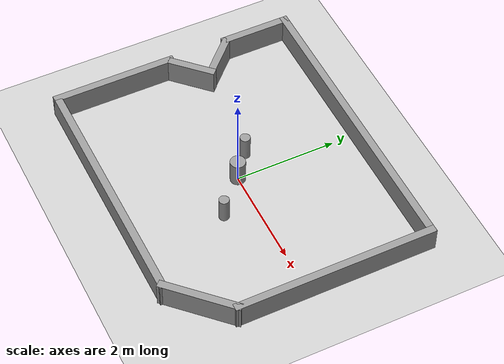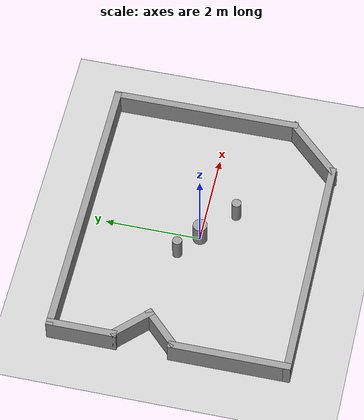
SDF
<sdf version="1.7">
 <world name="default">
  <light name="sun" type="directional">
   <pose>0 0 10 0 -0 0</pose>
   <diffuse>0.8 0.8 0.8 1</diffuse>
   <specular>0.2 0.2 0.2 1</specular>
   <attenuation>
    <range>1000</range>
    <constant>0.9</constant>
    <linear>0.01</linear>
    <quadratic>0.001</quadratic>
   </attenuation>
   <direction>-0.5 0.1 -0.9</direction>
   <spot><inner_angle>0</inner_angle><outer_angle>0</outer_angle><falloff>0</falloff></spot>
  </light>
  <model name="ground_plane">
   <static>1</static>
   <link name="link">
    <collision name="collision">
     <geometry><plane><normal>0 0 1</normal><size>100 100</size></plane></geometry>
     <surface><friction><ode><mu>100</mu><mu2>50</mu2></ode></friction></surface>
    </collision>
    <visual name="visual">
     <cast_shadows>0</cast_shadows>
     <geometry><plane><normal>0 0 1</normal><size>100 100</size></plane></geometry>
     <material>
      <script><uri>file://media/materials/scripts/gazebo.material</uri><name>Gazebo/Grey</name></script>
     </material>
    </visual>
   </link>
  </model>
  <gravity>0 0 -9.8</gravity>
  <magnetic_field>6e-06 2.3e-05 -4.2e-05</magnetic_field>
  <atmosphere type="adiabatic"/>
  <physics type="ode">
   <max_step_size>0.001</max_step_size>
   <real_time_factor>1</real_time_factor>
   <real_time_update_rate>1000</real_time_update_rate>
  </physics>
  <scene><ambient>0.4 0.4 0.4 1</ambient><background>0.7 0.7 0.7 1</background><shadows>1</shadows></scene>
  <spherical_coordinates>
   <surface_model>EARTH_WGS84</surface_model>
   <latitude_deg>0</latitude_deg>
   <longitude_deg>0</longitude_deg>
   <elevation>0</elevation>
   <heading_deg>0</heading_deg>
  </spherical_coordinates>
  <model name="room_with_edge">
   <link name="Wall_12">
    <pose>-0.5 -2.40947 0.25 0 -0 0</pose>
    <inertial>
     <inertia><ixx>0</ixx><ixy>0</ixy><ixz>0</ixz><iyy>0</iyy><iyz>0</iyz><izz>0</izz></inertia>
     <mass>0</mass>
    </inertial>
    <visual name="Wall_12_Visual">
     <geometry><box><size>5 0.15 0.5</size></box></geometry>
     <material>
      <script><uri>file://media/materials/scripts/gazebo.material</uri><name>Gazebo/Grey</name></script>
      <ambient>1 1 1 1</ambient>
      <shader type="pixel"><normal_map>__default__</normal_map></shader>
      <diffuse>0.7 0.7 0.7 1</diffuse>
      <specular>0.01 0.01 0.01 1</specular>
      <emissive>0 0 0 1</emissive>
     </material>
     <meta><layer>0</layer></meta>
    </visual>
    <collision name="Wall_12_Collision">
     <geometry><box><size>5 0.15 0.5</size></box></geometry>
     <surface>
      <friction>
       <ode><mu>1</mu><mu2>1</mu2><fdir1>0 0 0</fdir1><slip1>0</slip1><slip2>0</slip2></ode>
       <torsional>
        <coefficient>1</coefficient>
        <patch_radius>0</patch_radius>
        <surface_radius>0</surface_radius>
        <use_patch_radius>1</use_patch_radius>
        <ode><slip>0</slip></ode>
       </torsional>
      </friction>
      <bounce><restitution_coefficient>0</restitution_coefficient><threshold>1e+06</threshold></bounce>
      <contact>
       <collide_without_contact>0</collide_without_contact>
       <collide_without_contact_bitmask>1</collide_without_contact_bitmask>
       <collide_bitmask>1</collide_bitmask>
       <ode>
        <soft_cfm>0</soft_cfm>
        <soft_erp>0.2</soft_erp>
        <kp>1e+13</kp>
        <kd>1</kd>
        <max_vel>0.01</max_vel>
        <min_depth>0</min_depth>
       </ode>
       <bullet>
        <split_impulse>1</split_impulse>
        <split_impulse_penetration_threshold>-0.01</split_impulse_penetration_threshold>
        <soft_cfm>0</soft_cfm>
        <soft_erp>0.2</soft_erp>
        <kp>1e+13</kp>
        <kd>1</kd>
       </bullet>
      </contact>
     </surface>
    </collision>
   </link>
   <link name="Wall_13">
    <pose>2.425 -1.90947 0.25 0 -0 0.785398</pose>
    <inertial>
     <inertia><ixx>0</ixx><ixy>0</ixy><ixz>0</ixz><iyy>0</iyy><iyz>0</iyz><izz>0</izz></inertia>
     <mass>0</mass>
    </inertial>
    <visual name="Wall_13_Visual">
     <geometry><box><size>1.56421 0.15 0.5</size></box></geometry>
     <material>
      <script><uri>file://media/materials/scripts/gazebo.material</uri><name>Gazebo/Grey</name></script>
      <ambient>1 1 1 1</ambient>
      <shader type="pixel"><normal_map>__default__</normal_map></shader>
      <diffuse>0.7 0.7 0.7 1</diffuse>
      <specular>0.01 0.01 0.01 1</specular>
      <emissive>0 0 0 1</emissive>
     </material>
     <meta><layer>0</layer></meta>
    </visual>
    <collision name="Wall_13_Collision">
     <geometry><box><size>1.56421 0.15 0.5</size></box></geometry>
     <surface>
      <friction>
       <ode><mu>1</mu><mu2>1</mu2><fdir1>0 0 0</fdir1><slip1>0</slip1><slip2>0</slip2></ode>
       <torsional>
        <coefficient>1</coefficient>
        <patch_radius>0</patch_radius>
        <surface_radius>0</surface_radius>
        <use_patch_radius>1</use_patch_radius>
        <ode><slip>0</slip></ode>
       </torsional>
      </friction>
      <bounce><restitution_coefficient>0</restitution_coefficient><threshold>1e+06</threshold></bounce>
      <contact>
       <collide_without_contact>0</collide_without_contact>
       <collide_without_contact_bitmask>1</collide_without_contact_bitmask>
       <collide_bitmask>1</collide_bitmask>
       <ode>
        <soft_cfm>0</soft_cfm>
        <soft_erp>0.2</soft_erp>
        <kp>1e+13</kp>
        <kd>1</kd>
        <max_vel>0.01</max_vel>
        <min_depth>0</min_depth>
       </ode>
       <bullet>
        <split_impulse>1</split_impulse>
        <split_impulse_penetration_threshold>-0.01</split_impulse_penetration_threshold>
        <soft_cfm>0</soft_cfm>
        <soft_erp>0.2</soft_erp>
        <kp>1e+13</kp>
        <kd>1</kd>
       </bullet>
      </contact>
     </surface>
    </collision>
   </link>
   <link name="Wall_17">
    <pose>-2.925 -1.23447 0.25 0 -0 1.5708</pose>
    <inertial>
     <inertia><ixx>0</ixx><ixy>0</ixy><ixz>0</ixz><iyy>0</iyy><iyz>0</iyz><izz>0</izz></inertia>
     <mass>0</mass>
    </inertial>
    <visual name="Wall_17_Visual">
     <geometry><box><size>2.5 0.15 0.5</size></box></geometry>
     <material>
      <script><uri>file://media/materials/scripts/gazebo.material</uri><name>Gazebo/Grey</name></script>
      <ambient>1 1 1 1</ambient>
      <shader type="pixel"><normal_map>__default__</normal_map></shader>
      <diffuse>0.7 0.7 0.7 1</diffuse>
      <specular>0.01 0.01 0.01 1</specular>
      <emissive>0 0 0 1</emissive>
     </material>
     <meta><layer>0</layer></meta>
    </visual>
    <collision name="Wall_17_Collision">
     <geometry><box><size>2.5 0.15 0.5</size></box></geometry>
     <surface>
      <friction>
       <ode><mu>1</mu><mu2>1</mu2><fdir1>0 0 0</fdir1><slip1>0</slip1><slip2>0</slip2></ode>
       <torsional>
        <coefficient>1</coefficient>
        <patch_radius>0</patch_radius>
        <surface_radius>0</surface_radius>
        <use_patch_radius>1</use_patch_radius>
        <ode><slip>0</slip></ode>
       </torsional>
      </friction>
      <bounce><restitution_coefficient>0</restitution_coefficient><threshold>1e+06</threshold></bounce>
      <contact>
       <collide_without_contact>0</collide_without_contact>
       <collide_without_contact_bitmask>1</collide_without_contact_bitmask>
       <collide_bitmask>1</collide_bitmask>
       <ode>
        <soft_cfm>0</soft_cfm>
        <soft_erp>0.2</soft_erp>
        <kp>1e+13</kp>
        <kd>1</kd>
        <max_vel>0.01</max_vel>
        <min_depth>0</min_depth>
       </ode>
       <bullet>
        <split_impulse>1</split_impulse>
        <split_impulse_penetration_threshold>-0.01</split_impulse_penetration_threshold>
        <soft_cfm>0</soft_cfm>
        <soft_erp>0.2</soft_erp>
        <kp>1e+13</kp>
        <kd>1</kd>
       </bullet>
      </contact>
     </surface>
    </collision>
   </link>
   <link name="Wall_18">
    <pose>-2.58858 0.231261 0.25 0 -0 0.785398</pose>
    <inertial>
     <inertia><ixx>0</ixx><ixy>0</ixy><ixz>0</ixz><iyy>0</iyy><iyz>0</iyz><izz>0</izz></inertia>
     <mass>0</mass>
    </inertial>
    <visual name="Wall_18_Visual">
     <geometry><box><size>1 0.15 0.5</size></box></geometry>
     <material>
      <script><uri>file://media/materials/scripts/gazebo.material</uri><name>Gazebo/Grey</name></script>
      <ambient>1 1 1 1</ambient>
      <shader type="pixel"><normal_map>__default__</normal_map></shader>
      <diffuse>0.7 0.7 0.7 1</diffuse>
      <specular>0.01 0.01 0.01 1</specular>
      <emissive>0 0 0 1</emissive>
     </material>
     <meta><layer>0</layer></meta>
    </visual>
    <collision name="Wall_18_Collision">
     <geometry><box><size>1 0.15 0.5</size></box></geometry>
     <surface>
      <friction>
       <ode><mu>1</mu><mu2>1</mu2><fdir1>0 0 0</fdir1><slip1>0</slip1><slip2>0</slip2></ode>
       <torsional>
        <coefficient>1</coefficient>
        <patch_radius>0</patch_radius>
        <surface_radius>0</surface_radius>
        <use_patch_radius>1</use_patch_radius>
        <ode><slip>0</slip></ode>
       </torsional>
      </friction>
      <bounce><restitution_coefficient>0</restitution_coefficient><threshold>1e+06</threshold></bounce>
      <contact>
       <collide_without_contact>0</collide_without_contact>
       <collide_without_contact_bitmask>1</collide_without_contact_bitmask>
       <collide_bitmask>1</collide_bitmask>
       <ode>
        <soft_cfm>0</soft_cfm>
        <soft_erp>0.2</soft_erp>
        <kp>1e+13</kp>
        <kd>1</kd>
        <max_vel>0.01</max_vel>
        <min_depth>0</min_depth>
       </ode>
       <bullet>
        <split_impulse>1</split_impulse>
        <split_impulse_penetration_threshold>-0.01</split_impulse_penetration_threshold>
        <soft_cfm>0</soft_cfm>
        <soft_erp>0.2</soft_erp>
        <kp>1e+13</kp>
        <kd>1</kd>
       </bullet>
      </contact>
     </surface>
    </collision>
   </link>
   <link name="Wall_19">
    <pose>-2.59522 0.831866 0.25 0 -0 2.35619</pose>
    <inertial>
     <inertia><ixx>0</ixx><ixy>0</ixy><ixz>0</ixz><iyy>0</iyy><iyz>0</iyz><izz>0</izz></inertia>
     <mass>0</mass>
    </inertial>
    <visual name="Wall_19_Visual">
     <geometry><box><size>1 0.15 0.5</size></box></geometry>
     <material>
      <script><uri>file://media/materials/scripts/gazebo.material</uri><name>Gazebo/Grey</name></script>
      <ambient>1 1 1 1</ambient>
      <shader type="pixel"><normal_map>__default__</normal_map></shader>
      <diffuse>0.7 0.7 0.7 1</diffuse>
      <specular>0.01 0.01 0.01 1</specular>
      <emissive>0 0 0 1</emissive>
     </material>
     <meta><layer>0</layer></meta>
    </visual>
    <collision name="Wall_19_Collision">
     <geometry><box><size>1 0.15 0.5</size></box></geometry>
     <surface>
      <friction>
       <ode><mu>1</mu><mu2>1</mu2><fdir1>0 0 0</fdir1><slip1>0</slip1><slip2>0</slip2></ode>
       <torsional>
        <coefficient>1</coefficient>
        <patch_radius>0</patch_radius>
        <surface_radius>0</surface_radius>
        <use_patch_radius>1</use_patch_radius>
        <ode><slip>0</slip></ode>
       </torsional>
      </friction>
      <bounce><restitution_coefficient>0</restitution_coefficient><threshold>1e+06</threshold></bounce>
      <contact>
       <collide_without_contact>0</collide_without_contact>
       <collide_without_contact_bitmask>1</collide_without_contact_bitmask>
       <collide_bitmask>1</collide_bitmask>
       <ode>
        <soft_cfm>0</soft_cfm>
        <soft_erp>0.2</soft_erp>
        <kp>1e+13</kp>
        <kd>1</kd>
        <max_vel>0.01</max_vel>
        <min_depth>0</min_depth>
       </ode>
       <bullet>
        <split_impulse>1</split_impulse>
        <split_impulse_penetration_threshold>-0.01</split_impulse_penetration_threshold>
        <soft_cfm>0</soft_cfm>
        <soft_erp>0.2</soft_erp>
        <kp>1e+13</kp>
        <kd>1</kd>
       </bullet>
      </contact>
     </surface>
    </collision>
   </link>
   <link name="Wall_20">
    <pose>-2.925 1.79157 0.25 0 -0 1.5708</pose>
    <inertial>
     <inertia><ixx>0</ixx><ixy>0</ixy><ixz>0</ixz><iyy>0</iyy><iyz>0</iyz><izz>0</izz></inertia>
     <mass>0</mass>
    </inertial>
    <visual name="Wall_20_Visual">
     <geometry><box><size>1.44792 0.15 0.5</size></box></geometry>
     <material>
      <script><uri>file://media/materials/scripts/gazebo.material</uri><name>Gazebo/Grey</name></script>
      <ambient>1 1 1 1</ambient>
      <shader type="pixel"><normal_map>__default__</normal_map></shader>
      <diffuse>0.7 0.7 0.7 1</diffuse>
      <specular>0.01 0.01 0.01 1</specular>
      <emissive>0 0 0 1</emissive>
     </material>
     <meta><layer>0</layer></meta>
    </visual>
    <collision name="Wall_20_Collision">
     <geometry><box><size>1.44792 0.15 0.5</size></box></geometry>
     <surface>
      <friction>
       <ode><mu>1</mu><mu2>1</mu2><fdir1>0 0 0</fdir1><slip1>0</slip1><slip2>0</slip2></ode>
       <torsional>
        <coefficient>1</coefficient>
        <patch_radius>0</patch_radius>
        <surface_radius>0</surface_radius>
        <use_patch_radius>1</use_patch_radius>
        <ode><slip>0</slip></ode>
       </torsional>
      </friction>
      <bounce><restitution_coefficient>0</restitution_coefficient><threshold>1e+06</threshold></bounce>
      <contact>
       <collide_without_contact>0</collide_without_contact>
       <collide_without_contact_bitmask>1</collide_without_contact_bitmask>
       <collide_bitmask>1</collide_bitmask>
       <ode>
        <soft_cfm>0</soft_cfm>
        <soft_erp>0.2</soft_erp>
        <kp>1e+13</kp>
        <kd>1</kd>
        <max_vel>0.01</max_vel>
        <min_depth>0</min_depth>
       </ode>
       <bullet>
        <split_impulse>1</split_impulse>
        <split_impulse_penetration_threshold>-0.01</split_impulse_penetration_threshold>
        <soft_cfm>0</soft_cfm>
        <soft_erp>0.2</soft_erp>
        <kp>1e+13</kp>
        <kd>1</kd>
       </bullet>
      </contact>
     </surface>
    </collision>
   </link>
   <link name="Wall_3">
    <pose>0 2.44053 0.25 0 -0 0</pose>
    <inertial>
     <inertia><ixx>0</ixx><ixy>0</ixy><ixz>0</ixz><iyy>0</iyy><iyz>0</iyz><izz>0</izz></inertia>
     <mass>0</mass>
    </inertial>
    <visual name="Wall_3_Visual">
     <geometry><box><size>6 0.15 0.5</size></box></geometry>
     <material>
      <script><uri>file://media/materials/scripts/gazebo.material</uri><name>Gazebo/Grey</name></script>
      <ambient>1 1 1 1</ambient>
      <shader type="pixel"><normal_map>__default__</normal_map></shader>
      <diffuse>0.7 0.7 0.7 1</diffuse>
      <specular>0.01 0.01 0.01 1</specular>
      <emissive>0 0 0 1</emissive>
     </material>
     <meta><layer>0</layer></meta>
    </visual>
    <collision name="Wall_3_Collision">
     <geometry><box><size>6 0.15 0.5</size></box></geometry>
     <surface>
      <friction>
       <ode><mu>1</mu><mu2>1</mu2><fdir1>0 0 0</fdir1><slip1>0</slip1><slip2>0</slip2></ode>
       <torsional>
        <coefficient>1</coefficient>
        <patch_radius>0</patch_radius>
        <surface_radius>0</surface_radius>
        <use_patch_radius>1</use_patch_radius>
        <ode><slip>0</slip></ode>
       </torsional>
      </friction>
      <bounce><restitution_coefficient>0</restitution_coefficient><threshold>1e+06</threshold></bounce>
      <contact>
       <collide_without_contact>0</collide_without_contact>
       <collide_without_contact_bitmask>1</collide_without_contact_bitmask>
       <collide_bitmask>1</collide_bitmask>
       <ode>
        <soft_cfm>0</soft_cfm>
        <soft_erp>0.2</soft_erp>
        <kp>1e+13</kp>
        <kd>1</kd>
        <max_vel>0.01</max_vel>
        <min_depth>0</min_depth>
       </ode>
       <bullet>
        <split_impulse>1</split_impulse>
        <split_impulse_penetration_threshold>-0.01</split_impulse_penetration_threshold>
        <soft_cfm>0</soft_cfm>
        <soft_erp>0.2</soft_erp>
        <kp>1e+13</kp>
        <kd>1</kd>
       </bullet>
      </contact>
     </surface>
    </collision>
   </link>
   <link name="Wall_8">
    <pose>2.925 0.515533 0.25 0 0 -1.5708</pose>
    <inertial>
     <inertia><ixx>0</ixx><ixy>0</ixy><ixz>0</ixz><iyy>0</iyy><iyz>0</iyz><izz>0</izz></inertia>
     <mass>0</mass>
    </inertial>
    <visual name="Wall_8_Visual">
     <geometry><box><size>4 0.15 0.5</size></box></geometry>
     <material>
      <script><uri>file://media/materials/scripts/gazebo.material</uri><name>Gazebo/Grey</name></script>
      <ambient>1 1 1 1</ambient>
      <shader type="pixel"><normal_map>__default__</normal_map></shader>
      <diffuse>0.7 0.7 0.7 1</diffuse>
      <specular>0.01 0.01 0.01 1</specular>
      <emissive>0 0 0 1</emissive>
     </material>
     <meta><layer>0</layer></meta>
    </visual>
    <collision name="Wall_8_Collision">
     <geometry><box><size>4 0.15 0.5</size></box></geometry>
     <surface>
      <friction>
       <ode><mu>1</mu><mu2>1</mu2><fdir1>0 0 0</fdir1><slip1>0</slip1><slip2>0</slip2></ode>
       <torsional>
        <coefficient>1</coefficient>
        <patch_radius>0</patch_radius>
        <surface_radius>0</surface_radius>
        <use_patch_radius>1</use_patch_radius>
        <ode><slip>0</slip></ode>
       </torsional>
      </friction>
      <bounce><restitution_coefficient>0</restitution_coefficient><threshold>1e+06</threshold></bounce>
      <contact>
       <collide_without_contact>0</collide_without_contact>
       <collide_without_contact_bitmask>1</collide_without_contact_bitmask>
       <collide_bitmask>1</collide_bitmask>
       <ode>
        <soft_cfm>0</soft_cfm>
        <soft_erp>0.2</soft_erp>
        <kp>1e+13</kp>
        <kd>1</kd>
        <max_vel>0.01</max_vel>
        <min_depth>0</min_depth>
       </ode>
       <bullet>
        <split_impulse>1</split_impulse>
        <split_impulse_penetration_threshold>-0.01</split_impulse_penetration_threshold>
        <soft_cfm>0</soft_cfm>
        <soft_erp>0.2</soft_erp>
        <kp>1e+13</kp>
        <kd>1</kd>
       </bullet>
      </contact>
     </surface>
    </collision>
   </link>
   <static>1</static>
   <pose>0.004978 0.001466 0 0 -0 0</pose>
  </model>
  <model name="pillars">
   <link name="link_0">
    <inertial>
     <mass>1</mass>
     <inertia><ixx>0.145833</ixx><ixy>0</ixy><ixz>0</ixz><iyy>0.145833</iyy><iyz>0</iyz><izz>0.125</izz></inertia>
    </inertial>
    <pose>-0.626243 0.373143 0 0 -0 0</pose>
    <visual name="visual">
     <geometry><cylinder><radius>0.1</radius><length>0.5</length></cylinder></geometry>
     <material>
      <lighting>1</lighting>
      <script><uri>file://media/materials/scripts/gazebo.material</uri><name>Gazebo/Grey</name></script>
      <shader type="pixel"><normal_map>__default__</normal_map></shader>
      <ambient>0.3 0.3 0.3 1</ambient>
      <diffuse>0.7 0.7 0.7 1</diffuse>
      <specular>0.01 0.01 0.01 1</specular>
      <emissive>0 0 0 1</emissive>
     </material>
    </visual>
    <collision name="collision">
     <geometry><cylinder><radius>0.1</radius><length>0.5</length></cylinder></geometry>
     <surface>
      <friction>
       <ode><mu>1</mu><mu2>1</mu2><fdir1>0 0 0</fdir1><slip1>0</slip1><slip2>0</slip2></ode>
       <torsional>
        <coefficient>1</coefficient>
        <patch_radius>0</patch_radius>
        <surface_radius>0</surface_radius>
        <use_patch_radius>1</use_patch_radius>
        <ode><slip>0</slip></ode>
       </torsional>
      </friction>
      <bounce><restitution_coefficient>0</restitution_coefficient><threshold>1e+06</threshold></bounce>
      <contact>
       <collide_without_contact>0</collide_without_contact>
       <collide_without_contact_bitmask>1</collide_without_contact_bitmask>
       <collide_bitmask>1</collide_bitmask>
       <ode>
        <soft_cfm>0</soft_cfm>
        <soft_erp>0.2</soft_erp>
        <kp>1e+13</kp>
        <kd>1</kd>
        <max_vel>0.01</max_vel>
        <min_depth>0</min_depth>
       </ode>
       <bullet>
        <split_impulse>1</split_impulse>
        <split_impulse_penetration_threshold>-0.01</split_impulse_penetration_threshold>
        <soft_cfm>0</soft_cfm>
        <soft_erp>0.2</soft_erp>
        <kp>1e+13</kp>
        <kd>1</kd>
       </bullet>
      </contact>
     </surface>
    </collision>
   </link>
   <link name="link_0_clone">
    <inertial>
     <mass>1</mass>
     <inertia><ixx>0.145833</ixx><ixy>0</ixy><ixz>0</ixz><iyy>0.145833</iyy><iyz>0</iyz><izz>0.125</izz></inertia>
    </inertial>
    <pose>-0.156006 -0.005898 0 0 -0 0</pose>
    <visual name="visual">
     <geometry><cylinder><radius>0.15</radius><length>0.5</length></cylinder></geometry>
     <material>
      <lighting>1</lighting>
      <script><uri>file://media/materials/scripts/gazebo.material</uri><name>Gazebo/Grey</name></script>
      <shader type="pixel"><normal_map>__default__</normal_map></shader>
      <ambient>0.3 0.3 0.3 1</ambient>
      <diffuse>0.7 0.7 0.7 1</diffuse>
      <specular>0.01 0.01 0.01 1</specular>
      <emissive>0 0 0 1</emissive>
     </material>
    </visual>
    <collision name="collision">
     <geometry><cylinder><radius>0.15</radius><length>0.5</length></cylinder></geometry>
     <surface>
      <friction>
       <ode><mu>1</mu><mu2>1</mu2><fdir1>0 0 0</fdir1><slip1>0</slip1><slip2>0</slip2></ode>
       <torsional>
        <coefficient>1</coefficient>
        <patch_radius>0</patch_radius>
        <surface_radius>0</surface_radius>
        <use_patch_radius>1</use_patch_radius>
        <ode><slip>0</slip></ode>
       </torsional>
      </friction>
      <bounce><restitution_coefficient>0</restitution_coefficient><threshold>1e+06</threshold></bounce>
      <contact>
       <collide_without_contact>0</collide_without_contact>
       <collide_without_contact_bitmask>1</collide_without_contact_bitmask>
       <collide_bitmask>1</collide_bitmask>
       <ode>
        <soft_cfm>0</soft_cfm>
        <soft_erp>0.2</soft_erp>
        <kp>1e+13</kp>
        <kd>1</kd>
        <max_vel>0.01</max_vel>
        <min_depth>0</min_depth>
       </ode>
       <bullet>
        <split_impulse>1</split_impulse>
        <split_impulse_penetration_threshold>-0.01</split_impulse_penetration_threshold>
        <soft_cfm>0</soft_cfm>
        <soft_erp>0.2</soft_erp>
        <kp>1e+13</kp>
        <kd>1</kd>
       </bullet>
      </contact>
     </surface>
    </collision>
   </link>
   <link name="link_0_clone_0">
    <inertial>
     <mass>1</mass>
     <inertia><ixx>0.145833</ixx><ixy>0</ixy><ixz>0</ixz><iyy>0.145833</iyy><iyz>0</iyz><izz>0.125</izz></inertia>
    </inertial>
    <pose>0.546295 -0.624807 0 0 -0 0</pose>
    <visual name="visual">
     <geometry><cylinder><radius>0.1</radius><length>0.5</length></cylinder></geometry>
     <material>
      <lighting>1</lighting>
      <script><uri>file://media/materials/scripts/gazebo.material</uri><name>Gazebo/Grey</name></script>
      <shader type="pixel"><normal_map>__default__</normal_map></shader>
      <ambient>0.3 0.3 0.3 1</ambient>
      <diffuse>0.7 0.7 0.7 1</diffuse>
      <specular>0.01 0.01 0.01 1</specular>
      <emissive>0 0 0 1</emissive>
     </material>
    </visual>
    <collision name="collision">
     <geometry><cylinder><radius>0.1</radius><length>0.5</length></cylinder></geometry>
     <surface>
      <friction>
       <ode><mu>1</mu><mu2>1</mu2><fdir1>0 0 0</fdir1><slip1>0</slip1><slip2>0</slip2></ode>
       <torsional>
        <coefficient>1</coefficient>
        <patch_radius>0</patch_radius>
        <surface_radius>0</surface_radius>
        <use_patch_radius>1</use_patch_radius>
        <ode><slip>0</slip></ode>
       </torsional>
      </friction>
      <bounce><restitution_coefficient>0</restitution_coefficient><threshold>1e+06</threshold></bounce>
      <contact>
       <collide_without_contact>0</collide_without_contact>
       <collide_without_contact_bitmask>1</collide_without_contact_bitmask>
       <collide_bitmask>1</collide_bitmask>
       <ode>
        <soft_cfm>0</soft_cfm>
        <soft_erp>0.2</soft_erp>
        <kp>1e+13</kp>
        <kd>1</kd>
        <max_vel>0.01</max_vel>
        <min_depth>0</min_depth>
       </ode>
       <bullet>
        <split_impulse>1</split_impulse>
        <split_impulse_penetration_threshold>-0.01</split_impulse_penetration_threshold>
        <soft_cfm>0</soft_cfm>
        <soft_erp>0.2</soft_erp>
        <kp>1e+13</kp>
        <kd>1</kd>
       </bullet>
      </contact>
     </surface>
    </collision>
   </link>
   <static>0</static>
   <pose>0.156006 0.005898 0.25 0 -0 0</pose>
  </model>
 </world>
</sdf>
